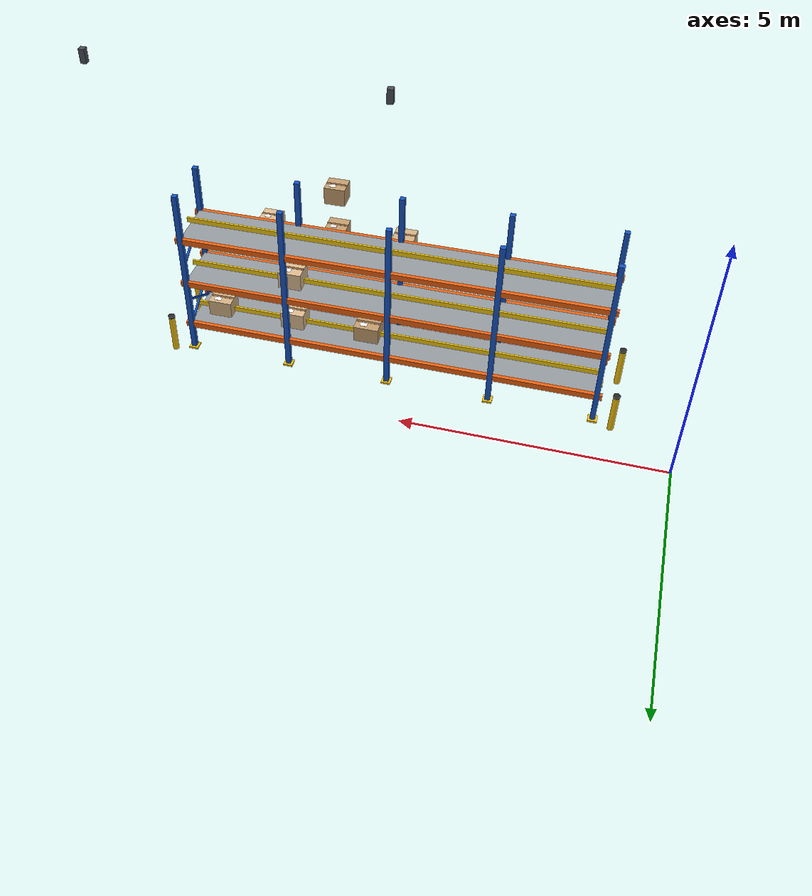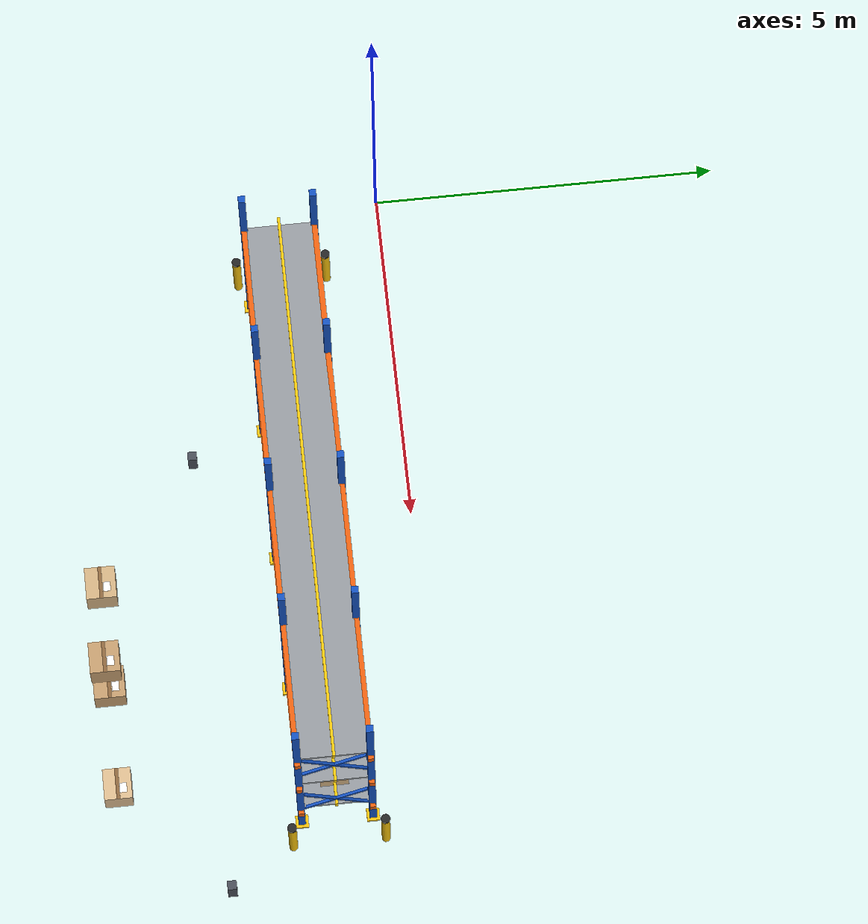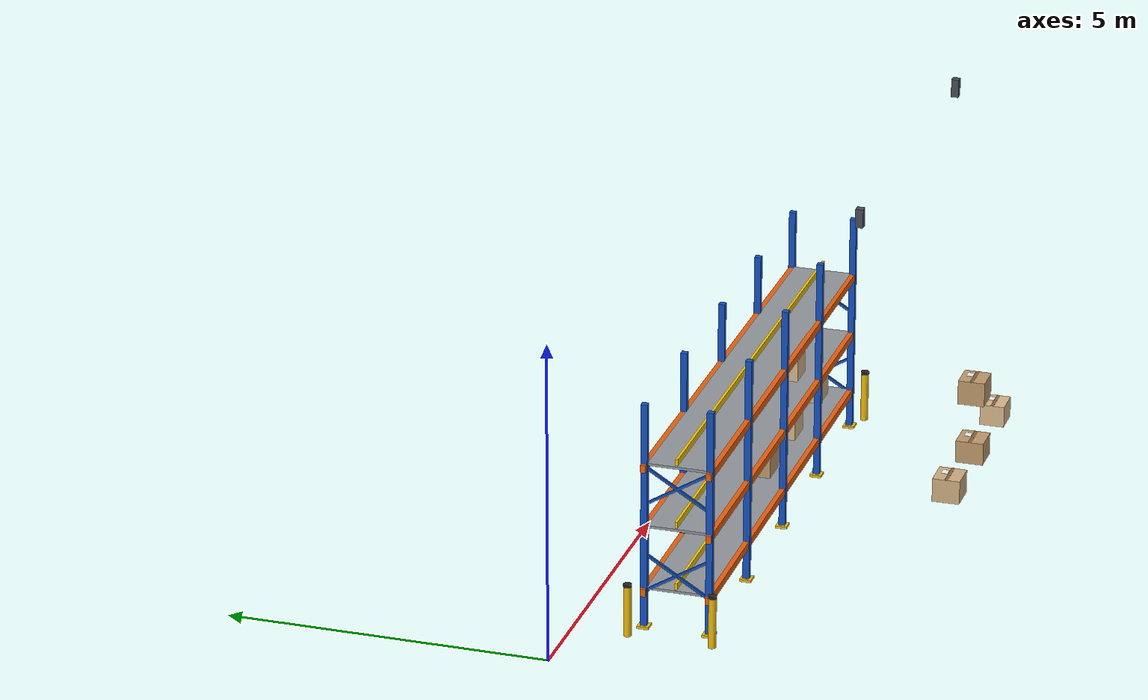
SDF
<sdf version="1.8">
 <world name="warehouse_3d">
  <model name="warehouse_architecture">
   <static>true</static>
   <link name="truss_web_1_3">
    <pose>6.0000 -3.0000 5.0500 0.0000 0.0000 0.0000</pose>
    <visual name="truss_web_1_3_vis">
     <geometry><box><size>0.1200 0.1200 0.3000</size></box></geometry>
     <material>
      <ambient>0.182 0.195 0.221 1.00</ambient>
      <diffuse>0.280 0.300 0.340 1.00</diffuse>
      <specular>0.15 0.15 0.15 1.0</specular>
     </material>
    </visual>
   </link>
   <link name="truss_web_1_4">
    <pose>12.0000 -3.0000 5.0500 0.0000 0.0000 0.0000</pose>
    <visual name="truss_web_1_4_vis">
     <geometry><box><size>0.1200 0.1200 0.3000</size></box></geometry>
     <material>
      <ambient>0.182 0.195 0.221 1.00</ambient>
      <diffuse>0.280 0.300 0.340 1.00</diffuse>
      <specular>0.15 0.15 0.15 1.0</specular>
     </material>
    </visual>
   </link>
  </model>
  <model name="Rack_C_East">
   <static>true</static>
   <pose>5.50 -1.50 0 0 0 0</pose>
   <link name="col_0_0">
    <pose>-4.0000 -0.5000 1.8000 0.0000 0.0000 0.0000</pose>
    <collision name="col_0_0_col"><geometry><box><size>0.1000 0.1000 3.6000</size></box></geometry></collision>
    <visual name="col_0_0_vis">
     <geometry><box><size>0.1000 0.1000 3.6000</size></box></geometry>
     <material>
      <ambient>0.052 0.208 0.488 1.00</ambient>
      <diffuse>0.080 0.320 0.750 1.00</diffuse>
      <specular>0.15 0.15 0.15 1.0</specular>
     </material>
    </visual>
   </link>
   <link name="foot_0_0">
    <pose>-4.0000 -0.5000 0.0200 0.0000 0.0000 0.0000</pose>
    <collision name="foot_0_0_col"><geometry><box><size>0.1800 0.1800 0.0400</size></box></geometry></collision>
    <visual name="foot_0_0_vis">
     <geometry><box><size>0.1800 0.1800 0.0400</size></box></geometry>
     <material>
      <ambient>0.617 0.488 0.033 1.00</ambient>
      <diffuse>0.950 0.750 0.050 1.00</diffuse>
      <specular>0.15 0.15 0.15 1.0</specular>
     </material>
    </visual>
   </link>
   <link name="col_0_1">
    <pose>-4.0000 0.5000 1.8000 0.0000 0.0000 0.0000</pose>
    <collision name="col_0_1_col"><geometry><box><size>0.1000 0.1000 3.6000</size></box></geometry></collision>
    <visual name="col_0_1_vis">
     <geometry><box><size>0.1000 0.1000 3.6000</size></box></geometry>
     <material>
      <ambient>0.052 0.208 0.488 1.00</ambient>
      <diffuse>0.080 0.320 0.750 1.00</diffuse>
      <specular>0.15 0.15 0.15 1.0</specular>
     </material>
    </visual>
   </link>
   <link name="foot_0_1">
    <pose>-4.0000 0.5000 0.0200 0.0000 0.0000 0.0000</pose>
    <collision name="foot_0_1_col"><geometry><box><size>0.1800 0.1800 0.0400</size></box></geometry></collision>
    <visual name="foot_0_1_vis">
     <geometry><box><size>0.1800 0.1800 0.0400</size></box></geometry>
     <material>
      <ambient>0.617 0.488 0.033 1.00</ambient>
      <diffuse>0.950 0.750 0.050 1.00</diffuse>
      <specular>0.15 0.15 0.15 1.0</specular>
     </material>
    </visual>
   </link>
   <link name="col_1_0">
    <pose>-2.0000 -0.5000 1.8000 0.0000 0.0000 0.0000</pose>
    <collision name="col_1_0_col"><geometry><box><size>0.1000 0.1000 3.6000</size></box></geometry></collision>
    <visual name="col_1_0_vis">
     <geometry><box><size>0.1000 0.1000 3.6000</size></box></geometry>
     <material>
      <ambient>0.052 0.208 0.488 1.00</ambient>
      <diffuse>0.080 0.320 0.750 1.00</diffuse>
      <specular>0.15 0.15 0.15 1.0</specular>
     </material>
    </visual>
   </link>
   <link name="foot_1_0">
    <pose>-2.0000 -0.5000 0.0200 0.0000 0.0000 0.0000</pose>
    <collision name="foot_1_0_col"><geometry><box><size>0.1800 0.1800 0.0400</size></box></geometry></collision>
    <visual name="foot_1_0_vis">
     <geometry><box><size>0.1800 0.1800 0.0400</size></box></geometry>
     <material>
      <ambient>0.617 0.488 0.033 1.00</ambient>
      <diffuse>0.950 0.750 0.050 1.00</diffuse>
      <specular>0.15 0.15 0.15 1.0</specular>
     </material>
    </visual>
   </link>
   <link name="col_1_1">
    <pose>-2.0000 0.5000 1.8000 0.0000 0.0000 0.0000</pose>
    <collision name="col_1_1_col"><geometry><box><size>0.1000 0.1000 3.6000</size></box></geometry></collision>
    <visual name="col_1_1_vis">
     <geometry><box><size>0.1000 0.1000 3.6000</size></box></geometry>
     <material>
      <ambient>0.052 0.208 0.488 1.00</ambient>
      <diffuse>0.080 0.320 0.750 1.00</diffuse>
      <specular>0.15 0.15 0.15 1.0</specular>
     </material>
    </visual>
   </link>
   <link name="foot_1_1">
    <pose>-2.0000 0.5000 0.0200 0.0000 0.0000 0.0000</pose>
    <collision name="foot_1_1_col"><geometry><box><size>0.1800 0.1800 0.0400</size></box></geometry></collision>
    <visual name="foot_1_1_vis">
     <geometry><box><size>0.1800 0.1800 0.0400</size></box></geometry>
     <material>
      <ambient>0.617 0.488 0.033 1.00</ambient>
      <diffuse>0.950 0.750 0.050 1.00</diffuse>
      <specular>0.15 0.15 0.15 1.0</specular>
     </material>
    </visual>
   </link>
   <link name="col_2_0">
    <pose>0.0000 -0.5000 1.8000 0.0000 0.0000 0.0000</pose>
    <collision name="col_2_0_col"><geometry><box><size>0.1000 0.1000 3.6000</size></box></geometry></collision>
    <visual name="col_2_0_vis">
     <geometry><box><size>0.1000 0.1000 3.6000</size></box></geometry>
     <material>
      <ambient>0.052 0.208 0.488 1.00</ambient>
      <diffuse>0.080 0.320 0.750 1.00</diffuse>
      <specular>0.15 0.15 0.15 1.0</specular>
     </material>
    </visual>
   </link>
   <link name="foot_2_0">
    <pose>0.0000 -0.5000 0.0200 0.0000 0.0000 0.0000</pose>
    <collision name="foot_2_0_col"><geometry><box><size>0.1800 0.1800 0.0400</size></box></geometry></collision>
    <visual name="foot_2_0_vis">
     <geometry><box><size>0.1800 0.1800 0.0400</size></box></geometry>
     <material>
      <ambient>0.617 0.488 0.033 1.00</ambient>
      <diffuse>0.950 0.750 0.050 1.00</diffuse>
      <specular>0.15 0.15 0.15 1.0</specular>
     </material>
    </visual>
   </link>
   <link name="col_2_1">
    <pose>0.0000 0.5000 1.8000 0.0000 0.0000 0.0000</pose>
    <collision name="col_2_1_col"><geometry><box><size>0.1000 0.1000 3.6000</size></box></geometry></collision>
    <visual name="col_2_1_vis">
     <geometry><box><size>0.1000 0.1000 3.6000</size></box></geometry>
     <material>
      <ambient>0.052 0.208 0.488 1.00</ambient>
      <diffuse>0.080 0.320 0.750 1.00</diffuse>
      <specular>0.15 0.15 0.15 1.0</specular>
     </material>
    </visual>
   </link>
   <link name="foot_2_1">
    <pose>0.0000 0.5000 0.0200 0.0000 0.0000 0.0000</pose>
    <collision name="foot_2_1_col"><geometry><box><size>0.1800 0.1800 0.0400</size></box></geometry></collision>
    <visual name="foot_2_1_vis">
     <geometry><box><size>0.1800 0.1800 0.0400</size></box></geometry>
     <material>
      <ambient>0.617 0.488 0.033 1.00</ambient>
      <diffuse>0.950 0.750 0.050 1.00</diffuse>
      <specular>0.15 0.15 0.15 1.0</specular>
     </material>
    </visual>
   </link>
   <link name="col_3_0">
    <pose>2.0000 -0.5000 1.8000 0.0000 0.0000 0.0000</pose>
    <collision name="col_3_0_col"><geometry><box><size>0.1000 0.1000 3.6000</size></box></geometry></collision>
    <visual name="col_3_0_vis">
     <geometry><box><size>0.1000 0.1000 3.6000</size></box></geometry>
     <material>
      <ambient>0.052 0.208 0.488 1.00</ambient>
      <diffuse>0.080 0.320 0.750 1.00</diffuse>
      <specular>0.15 0.15 0.15 1.0</specular>
     </material>
    </visual>
   </link>
   <link name="foot_3_0">
    <pose>2.0000 -0.5000 0.0200 0.0000 0.0000 0.0000</pose>
    <collision name="foot_3_0_col"><geometry><box><size>0.1800 0.1800 0.0400</size></box></geometry></collision>
    <visual name="foot_3_0_vis">
     <geometry><box><size>0.1800 0.1800 0.0400</size></box></geometry>
     <material>
      <ambient>0.617 0.488 0.033 1.00</ambient>
      <diffuse>0.950 0.750 0.050 1.00</diffuse>
      <specular>0.15 0.15 0.15 1.0</specular>
     </material>
    </visual>
   </link>
   <link name="col_3_1">
    <pose>2.0000 0.5000 1.8000 0.0000 0.0000 0.0000</pose>
    <collision name="col_3_1_col"><geometry><box><size>0.1000 0.1000 3.6000</size></box></geometry></collision>
    <visual name="col_3_1_vis">
     <geometry><box><size>0.1000 0.1000 3.6000</size></box></geometry>
     <material>
      <ambient>0.052 0.208 0.488 1.00</ambient>
      <diffuse>0.080 0.320 0.750 1.00</diffuse>
      <specular>0.15 0.15 0.15 1.0</specular>
     </material>
    </visual>
   </link>
   <link name="foot_3_1">
    <pose>2.0000 0.5000 0.0200 0.0000 0.0000 0.0000</pose>
    <collision name="foot_3_1_col"><geometry><box><size>0.1800 0.1800 0.0400</size></box></geometry></collision>
    <visual name="foot_3_1_vis">
     <geometry><box><size>0.1800 0.1800 0.0400</size></box></geometry>
     <material>
      <ambient>0.617 0.488 0.033 1.00</ambient>
      <diffuse>0.950 0.750 0.050 1.00</diffuse>
      <specular>0.15 0.15 0.15 1.0</specular>
     </material>
    </visual>
   </link>
   <link name="col_4_0">
    <pose>4.0000 -0.5000 1.8000 0.0000 0.0000 0.0000</pose>
    <collision name="col_4_0_col"><geometry><box><size>0.1000 0.1000 3.6000</size></box></geometry></collision>
    <visual name="col_4_0_vis">
     <geometry><box><size>0.1000 0.1000 3.6000</size></box></geometry>
     <material>
      <ambient>0.052 0.208 0.488 1.00</ambient>
      <diffuse>0.080 0.320 0.750 1.00</diffuse>
      <specular>0.15 0.15 0.15 1.0</specular>
     </material>
    </visual>
   </link>
   <link name="foot_4_0">
    <pose>4.0000 -0.5000 0.0200 0.0000 0.0000 0.0000</pose>
    <collision name="foot_4_0_col"><geometry><box><size>0.1800 0.1800 0.0400</size></box></geometry></collision>
    <visual name="foot_4_0_vis">
     <geometry><box><size>0.1800 0.1800 0.0400</size></box></geometry>
     <material>
      <ambient>0.617 0.488 0.033 1.00</ambient>
      <diffuse>0.950 0.750 0.050 1.00</diffuse>
      <specular>0.15 0.15 0.15 1.0</specular>
     </material>
    </visual>
   </link>
   <link name="col_4_1">
    <pose>4.0000 0.5000 1.8000 0.0000 0.0000 0.0000</pose>
    <collision name="col_4_1_col"><geometry><box><size>0.1000 0.1000 3.6000</size></box></geometry></collision>
    <visual name="col_4_1_vis">
     <geometry><box><size>0.1000 0.1000 3.6000</size></box></geometry>
     <material>
      <ambient>0.052 0.208 0.488 1.00</ambient>
      <diffuse>0.080 0.320 0.750 1.00</diffuse>
      <specular>0.15 0.15 0.15 1.0</specular>
     </material>
    </visual>
   </link>
   <link name="foot_4_1">
    <pose>4.0000 0.5000 0.0200 0.0000 0.0000 0.0000</pose>
    <collision name="foot_4_1_col"><geometry><box><size>0.1800 0.1800 0.0400</size></box></geometry></collision>
    <visual name="foot_4_1_vis">
     <geometry><box><size>0.1800 0.1800 0.0400</size></box></geometry>
     <material>
      <ambient>0.617 0.488 0.033 1.00</ambient>
      <diffuse>0.950 0.750 0.050 1.00</diffuse>
      <specular>0.15 0.15 0.15 1.0</specular>
     </material>
    </visual>
   </link>
   <link name="x_brace_low_1_w">
    <pose>-4.0000 0.0000 0.9000 0.5500 0.0000 0.0000</pose>
    <visual name="x_brace_low_1_w_vis">
     <geometry><box><size>0.0400 1.0500 0.0400</size></box></geometry>
     <material>
      <ambient>0.052 0.208 0.488 1.00</ambient>
      <diffuse>0.080 0.320 0.750 1.00</diffuse>
      <specular>0.15 0.15 0.15 1.0</specular>
     </material>
    </visual>
   </link>
   <link name="x_brace_low_2_w">
    <pose>-4.0000 0.0000 0.9000 -0.5500 0.0000 0.0000</pose>
    <visual name="x_brace_low_2_w_vis">
     <geometry><box><size>0.0400 1.0500 0.0400</size></box></geometry>
     <material>
      <ambient>0.052 0.208 0.488 1.00</ambient>
      <diffuse>0.080 0.320 0.750 1.00</diffuse>
      <specular>0.15 0.15 0.15 1.0</specular>
     </material>
    </visual>
   </link>
   <link name="x_brace_hi_1_w">
    <pose>-4.0000 0.0000 2.3000 0.5500 0.0000 0.0000</pose>
    <visual name="x_brace_hi_1_w_vis">
     <geometry><box><size>0.0400 1.0500 0.0400</size></box></geometry>
     <material>
      <ambient>0.052 0.208 0.488 1.00</ambient>
      <diffuse>0.080 0.320 0.750 1.00</diffuse>
      <specular>0.15 0.15 0.15 1.0</specular>
     </material>
    </visual>
   </link>
   <link name="x_brace_hi_2_w">
    <pose>-4.0000 0.0000 2.3000 -0.5500 0.0000 0.0000</pose>
    <visual name="x_brace_hi_2_w_vis">
     <geometry><box><size>0.0400 1.0500 0.0400</size></box></geometry>
     <material>
      <ambient>0.052 0.208 0.488 1.00</ambient>
      <diffuse>0.080 0.320 0.750 1.00</diffuse>
      <specular>0.15 0.15 0.15 1.0</specular>
     </material>
    </visual>
   </link>
   <link name="x_brace_low_1_e">
    <pose>4.0000 0.0000 0.9000 0.5500 0.0000 0.0000</pose>
    <visual name="x_brace_low_1_e_vis">
     <geometry><box><size>0.0400 1.0500 0.0400</size></box></geometry>
     <material>
      <ambient>0.052 0.208 0.488 1.00</ambient>
      <diffuse>0.080 0.320 0.750 1.00</diffuse>
      <specular>0.15 0.15 0.15 1.0</specular>
     </material>
    </visual>
   </link>
   <link name="x_brace_low_2_e">
    <pose>4.0000 0.0000 0.9000 -0.5500 0.0000 0.0000</pose>
    <visual name="x_brace_low_2_e_vis">
     <geometry><box><size>0.0400 1.0500 0.0400</size></box></geometry>
     <material>
      <ambient>0.052 0.208 0.488 1.00</ambient>
      <diffuse>0.080 0.320 0.750 1.00</diffuse>
      <specular>0.15 0.15 0.15 1.0</specular>
     </material>
    </visual>
   </link>
   <link name="x_brace_hi_1_e">
    <pose>4.0000 0.0000 2.3000 0.5500 0.0000 0.0000</pose>
    <visual name="x_brace_hi_1_e_vis">
     <geometry><box><size>0.0400 1.0500 0.0400</size></box></geometry>
     <material>
      <ambient>0.052 0.208 0.488 1.00</ambient>
      <diffuse>0.080 0.320 0.750 1.00</diffuse>
      <specular>0.15 0.15 0.15 1.0</specular>
     </material>
    </visual>
   </link>
   <link name="x_brace_hi_2_e">
    <pose>4.0000 0.0000 2.3000 -0.5500 0.0000 0.0000</pose>
    <visual name="x_brace_hi_2_e_vis">
     <geometry><box><size>0.0400 1.0500 0.0400</size></box></geometry>
     <material>
      <ambient>0.052 0.208 0.488 1.00</ambient>
      <diffuse>0.080 0.320 0.750 1.00</diffuse>
      <specular>0.15 0.15 0.15 1.0</specular>
     </material>
    </visual>
   </link>
   <link name="beam_front_0">
    <pose>0.0000 0.5000 0.6000 0.0000 0.0000 0.0000</pose>
    <collision name="beam_front_0_col">
     <geometry><box><size>8.2000 0.0800 0.1200</size></box></geometry>
    </collision>
    <visual name="beam_front_0_vis">
     <geometry><box><size>8.2000 0.0800 0.1200</size></box></geometry>
     <material>
      <ambient>0.598 0.247 0.039 1.00</ambient>
      <diffuse>0.920 0.380 0.060 1.00</diffuse>
      <specular>0.15 0.15 0.15 1.0</specular>
     </material>
    </visual>
   </link>
   <link name="beam_rear_0">
    <pose>0.0000 -0.5000 0.6000 0.0000 0.0000 0.0000</pose>
    <collision name="beam_rear_0_col">
     <geometry><box><size>8.2000 0.0800 0.1200</size></box></geometry>
    </collision>
    <visual name="beam_rear_0_vis">
     <geometry><box><size>8.2000 0.0800 0.1200</size></box></geometry>
     <material>
      <ambient>0.598 0.247 0.039 1.00</ambient>
      <diffuse>0.920 0.380 0.060 1.00</diffuse>
      <specular>0.15 0.15 0.15 1.0</specular>
     </material>
    </visual>
   </link>
   <link name="deck_0">
    <pose>0.0000 0.0000 0.6400 0.0000 0.0000 0.0000</pose>
    <collision name="deck_0_col"><geometry><box><size>8.0000 0.9400 0.0400</size></box></geometry></collision>
    <visual name="deck_0_vis">
     <geometry><box><size>8.0000 0.9400 0.0400</size></box></geometry>
     <material>
      <ambient>0.377 0.390 0.403 1.00</ambient>
      <diffuse>0.580 0.600 0.620 1.00</diffuse>
      <specular>0.15 0.15 0.15 1.0</specular>
     </material>
    </visual>
   </link>
   <link name="backstop_0">
    <pose>0.0000 0.0000 0.7500 0.0000 0.0000 0.0000</pose>
    <visual name="backstop_0_vis">
     <geometry><box><size>8.1000 0.0400 0.1000</size></box></geometry>
     <material>
      <ambient>0.617 0.507 0.033 1.00</ambient>
      <diffuse>0.950 0.780 0.050 1.00</diffuse>
      <specular>0.15 0.15 0.15 1.0</specular>
     </material>
    </visual>
   </link>
   <link name="beam_front_1">
    <pose>0.0000 0.5000 1.6000 0.0000 0.0000 0.0000</pose>
    <collision name="beam_front_1_col">
     <geometry><box><size>8.2000 0.0800 0.1200</size></box></geometry>
    </collision>
    <visual name="beam_front_1_vis">
     <geometry><box><size>8.2000 0.0800 0.1200</size></box></geometry>
     <material>
      <ambient>0.598 0.247 0.039 1.00</ambient>
      <diffuse>0.920 0.380 0.060 1.00</diffuse>
      <specular>0.15 0.15 0.15 1.0</specular>
     </material>
    </visual>
   </link>
   <link name="beam_rear_1">
    <pose>0.0000 -0.5000 1.6000 0.0000 0.0000 0.0000</pose>
    <collision name="beam_rear_1_col">
     <geometry><box><size>8.2000 0.0800 0.1200</size></box></geometry>
    </collision>
    <visual name="beam_rear_1_vis">
     <geometry><box><size>8.2000 0.0800 0.1200</size></box></geometry>
     <material>
      <ambient>0.598 0.247 0.039 1.00</ambient>
      <diffuse>0.920 0.380 0.060 1.00</diffuse>
      <specular>0.15 0.15 0.15 1.0</specular>
     </material>
    </visual>
   </link>
   <link name="deck_1">
    <pose>0.0000 0.0000 1.6400 0.0000 0.0000 0.0000</pose>
    <collision name="deck_1_col"><geometry><box><size>8.0000 0.9400 0.0400</size></box></geometry></collision>
    <visual name="deck_1_vis">
     <geometry><box><size>8.0000 0.9400 0.0400</size></box></geometry>
     <material>
      <ambient>0.377 0.390 0.403 1.00</ambient>
      <diffuse>0.580 0.600 0.620 1.00</diffuse>
      <specular>0.15 0.15 0.15 1.0</specular>
     </material>
    </visual>
   </link>
   <link name="backstop_1">
    <pose>0.0000 0.0000 1.7500 0.0000 0.0000 0.0000</pose>
    <visual name="backstop_1_vis">
     <geometry><box><size>8.1000 0.0400 0.1000</size></box></geometry>
     <material>
      <ambient>0.617 0.507 0.033 1.00</ambient>
      <diffuse>0.950 0.780 0.050 1.00</diffuse>
      <specular>0.15 0.15 0.15 1.0</specular>
     </material>
    </visual>
   </link>
   <link name="beam_front_2">
    <pose>0.0000 0.5000 2.6000 0.0000 0.0000 0.0000</pose>
    <collision name="beam_front_2_col">
     <geometry><box><size>8.2000 0.0800 0.1200</size></box></geometry>
    </collision>
    <visual name="beam_front_2_vis">
     <geometry><box><size>8.2000 0.0800 0.1200</size></box></geometry>
     <material>
      <ambient>0.598 0.247 0.039 1.00</ambient>
      <diffuse>0.920 0.380 0.060 1.00</diffuse>
      <specular>0.15 0.15 0.15 1.0</specular>
     </material>
    </visual>
   </link>
   <link name="beam_rear_2">
    <pose>0.0000 -0.5000 2.6000 0.0000 0.0000 0.0000</pose>
    <collision name="beam_rear_2_col">
     <geometry><box><size>8.2000 0.0800 0.1200</size></box></geometry>
    </collision>
    <visual name="beam_rear_2_vis">
     <geometry><box><size>8.2000 0.0800 0.1200</size></box></geometry>
     <material>
      <ambient>0.598 0.247 0.039 1.00</ambient>
      <diffuse>0.920 0.380 0.060 1.00</diffuse>
      <specular>0.15 0.15 0.15 1.0</specular>
     </material>
    </visual>
   </link>
   <link name="deck_2">
    <pose>0.0000 0.0000 2.6400 0.0000 0.0000 0.0000</pose>
    <collision name="deck_2_col"><geometry><box><size>8.0000 0.9400 0.0400</size></box></geometry></collision>
    <visual name="deck_2_vis">
     <geometry><box><size>8.0000 0.9400 0.0400</size></box></geometry>
     <material>
      <ambient>0.377 0.390 0.403 1.00</ambient>
      <diffuse>0.580 0.600 0.620 1.00</diffuse>
      <specular>0.15 0.15 0.15 1.0</specular>
     </material>
    </visual>
   </link>
   <link name="backstop_2">
    <pose>0.0000 0.0000 2.7500 0.0000 0.0000 0.0000</pose>
    <visual name="backstop_2_vis">
     <geometry><box><size>8.1000 0.0400 0.1000</size></box></geometry>
     <material>
      <ambient>0.617 0.507 0.033 1.00</ambient>
      <diffuse>0.950 0.780 0.050 1.00</diffuse>
      <specular>0.15 0.15 0.15 1.0</specular>
     </material>
    </visual>
   </link>
   <link name="bollard_0">
    <pose>-4.3500 -0.6500 0.4000 0.0000 0.0000 0.0000</pose>
    <collision name="bollard_0_col">
     <geometry><cylinder><radius>0.0600</radius><length>0.8000</length></cylinder></geometry>
    </collision>
    <visual name="bollard_0_vis">
     <geometry><cylinder><radius>0.0600</radius><length>0.8000</length></cylinder></geometry>
     <material>
      <ambient>0.617 0.488 0.033 1.00</ambient>
      <diffuse>0.950 0.750 0.050 1.00</diffuse>
      <specular>0.2 0.2 0.2 1.0</specular>
     </material>
    </visual>
   </link>
   <link name="bollard_cap_0">
    <pose>-4.3500 -0.6500 0.8200 0.0000 0.0000 0.0000</pose>
    <collision name="bollard_cap_0_col">
     <geometry><cylinder><radius>0.0650</radius><length>0.0400</length></cylinder></geometry>
    </collision>
    <visual name="bollard_cap_0_vis">
     <geometry><cylinder><radius>0.0650</radius><length>0.0400</length></cylinder></geometry>
     <material>
      <ambient>0.098 0.098 0.098 1.00</ambient>
      <diffuse>0.150 0.150 0.150 1.00</diffuse>
      <specular>0.2 0.2 0.2 1.0</specular>
     </material>
    </visual>
   </link>
   <link name="bollard_1">
    <pose>-4.3500 0.6500 0.4000 0.0000 0.0000 0.0000</pose>
    <collision name="bollard_1_col">
     <geometry><cylinder><radius>0.0600</radius><length>0.8000</length></cylinder></geometry>
    </collision>
    <visual name="bollard_1_vis">
     <geometry><cylinder><radius>0.0600</radius><length>0.8000</length></cylinder></geometry>
     <material>
      <ambient>0.617 0.488 0.033 1.00</ambient>
      <diffuse>0.950 0.750 0.050 1.00</diffuse>
      <specular>0.2 0.2 0.2 1.0</specular>
     </material>
    </visual>
   </link>
   <link name="bollard_cap_1">
    <pose>-4.3500 0.6500 0.8200 0.0000 0.0000 0.0000</pose>
    <collision name="bollard_cap_1_col">
     <geometry><cylinder><radius>0.0650</radius><length>0.0400</length></cylinder></geometry>
    </collision>
    <visual name="bollard_cap_1_vis">
     <geometry><cylinder><radius>0.0650</radius><length>0.0400</length></cylinder></geometry>
     <material>
      <ambient>0.098 0.098 0.098 1.00</ambient>
      <diffuse>0.150 0.150 0.150 1.00</diffuse>
      <specular>0.2 0.2 0.2 1.0</specular>
     </material>
    </visual>
   </link>
   <link name="bollard_2">
    <pose>4.3500 -0.6500 0.4000 0.0000 0.0000 0.0000</pose>
    <collision name="bollard_2_col">
     <geometry><cylinder><radius>0.0600</radius><length>0.8000</length></cylinder></geometry>
    </collision>
    <visual name="bollard_2_vis">
     <geometry><cylinder><radius>0.0600</radius><length>0.8000</length></cylinder></geometry>
     <material>
      <ambient>0.617 0.488 0.033 1.00</ambient>
      <diffuse>0.950 0.750 0.050 1.00</diffuse>
      <specular>0.2 0.2 0.2 1.0</specular>
     </material>
    </visual>
   </link>
   <link name="bollard_cap_2">
    <pose>4.3500 -0.6500 0.8200 0.0000 0.0000 0.0000</pose>
    <collision name="bollard_cap_2_col">
     <geometry><cylinder><radius>0.0650</radius><length>0.0400</length></cylinder></geometry>
    </collision>
    <visual name="bollard_cap_2_vis">
     <geometry><cylinder><radius>0.0650</radius><length>0.0400</length></cylinder></geometry>
     <material>
      <ambient>0.098 0.098 0.098 1.00</ambient>
      <diffuse>0.150 0.150 0.150 1.00</diffuse>
      <specular>0.2 0.2 0.2 1.0</specular>
     </material>
    </visual>
   </link>
   <link name="bollard_3">
    <pose>4.3500 0.6500 0.4000 0.0000 0.0000 0.0000</pose>
    <collision name="bollard_3_col">
     <geometry><cylinder><radius>0.0600</radius><length>0.8000</length></cylinder></geometry>
    </collision>
    <visual name="bollard_3_vis">
     <geometry><cylinder><radius>0.0600</radius><length>0.8000</length></cylinder></geometry>
     <material>
      <ambient>0.617 0.488 0.033 1.00</ambient>
      <diffuse>0.950 0.750 0.050 1.00</diffuse>
      <specular>0.2 0.2 0.2 1.0</specular>
     </material>
    </visual>
   </link>
   <link name="bollard_cap_3">
    <pose>4.3500 0.6500 0.8200 0.0000 0.0000 0.0000</pose>
    <collision name="bollard_cap_3_col">
     <geometry><cylinder><radius>0.0650</radius><length>0.0400</length></cylinder></geometry>
    </collision>
    <visual name="bollard_cap_3_vis">
     <geometry><cylinder><radius>0.0650</radius><length>0.0400</length></cylinder></geometry>
     <material>
      <ambient>0.098 0.098 0.098 1.00</ambient>
      <diffuse>0.150 0.150 0.150 1.00</diffuse>
      <specular>0.2 0.2 0.2 1.0</specular>
     </material>
    </visual>
   </link>
  </model>
  <model name="package_P058">
   <static>true</static>
   <pose>6.00 -4.50 0.82 0 0 0</pose>
   <link name="box_link">
    <collision name="box_col"><geometry><box><size>0.47 0.43 0.38</size></box></geometry></collision>
    <visual name="box_vis">
     <geometry><box><size>0.47 0.43 0.38</size></box></geometry>
     <material>
      <ambient>0.57 0.48 0.36 1.0</ambient>
      <diffuse>0.82 0.69 0.51 1.0</diffuse>
      <specular>0.08 0.08 0.08 1.0</specular>
     </material>
    </visual>
    <visual name="top_tape">
     <pose>0 0 0.1910 0 0 0</pose>
     <geometry><box><size>0.472 0.05 0.002</size></box></geometry>
     <material><ambient>0.48 0.35 0.20 1.0</ambient><diffuse>0.55 0.40 0.24 1.0</diffuse></material>
    </visual>
    <visual name="shipping_label">
     <pose>0.070 0.086 0.1920 0 0 0</pose>
     <geometry><box><size>0.14 0.10 0.002</size></box></geometry>
     <material><ambient>0.92 0.92 0.92 1.0</ambient><diffuse>0.98 0.98 0.98 1.0</diffuse></material>
    </visual>
   </link>
  </model>
  <model name="package_P059">
   <static>true</static>
   <pose>7.50 -4.50 0.82 0 0 0</pose>
   <link name="box_link">
    <collision name="box_col"><geometry><box><size>0.46 0.44 0.36</size></box></geometry></collision>
    <visual name="box_vis">
     <geometry><box><size>0.46 0.44 0.36</size></box></geometry>
     <material>
      <ambient>0.53 0.43 0.30 1.0</ambient>
      <diffuse>0.76 0.61 0.43 1.0</diffuse>
      <specular>0.08 0.08 0.08 1.0</specular>
     </material>
    </visual>
    <visual name="top_tape">
     <pose>0 0 0.1810 0 0 0</pose>
     <geometry><box><size>0.462 0.05 0.002</size></box></geometry>
     <material><ambient>0.48 0.35 0.20 1.0</ambient><diffuse>0.55 0.40 0.24 1.0</diffuse></material>
    </visual>
    <visual name="shipping_label">
     <pose>0.069 0.088 0.1820 0 0 0</pose>
     <geometry><box><size>0.14 0.10 0.002</size></box></geometry>
     <material><ambient>0.92 0.92 0.92 1.0</ambient><diffuse>0.98 0.98 0.98 1.0</diffuse></material>
    </visual>
   </link>
  </model>
  <model name="package_P060">
   <static>true</static>
   <pose>9.00 -4.50 0.82 0 0 0</pose>
   <link name="box_link">
    <collision name="box_col"><geometry><box><size>0.45 0.39 0.34</size></box></geometry></collision>
    <visual name="box_vis">
     <geometry><box><size>0.45 0.39 0.34</size></box></geometry>
     <material>
      <ambient>0.60 0.51 0.39 1.0</ambient>
      <diffuse>0.86 0.73 0.56 1.0</diffuse>
      <specular>0.08 0.08 0.08 1.0</specular>
     </material>
    </visual>
    <visual name="top_tape">
     <pose>0 0 0.1710 0 0 0</pose>
     <geometry><box><size>0.452 0.05 0.002</size></box></geometry>
     <material><ambient>0.48 0.35 0.20 1.0</ambient><diffuse>0.55 0.40 0.24 1.0</diffuse></material>
    </visual>
    <visual name="shipping_label">
     <pose>0.068 0.078 0.1720 0 0 0</pose>
     <geometry><box><size>0.14 0.10 0.002</size></box></geometry>
     <material><ambient>0.92 0.92 0.92 1.0</ambient><diffuse>0.98 0.98 0.98 1.0</diffuse></material>
    </visual>
   </link>
  </model>
  <model name="package_P062">
   <static>true</static>
   <pose>7.50 -4.50 1.82 0 0 0</pose>
   <link name="box_link">
    <collision name="box_col"><geometry><box><size>0.45 0.42 0.39</size></box></geometry></collision>
    <visual name="box_vis">
     <geometry><box><size>0.45 0.42 0.39</size></box></geometry>
     <material>
      <ambient>0.53 0.43 0.30 1.0</ambient>
      <diffuse>0.76 0.61 0.43 1.0</diffuse>
      <specular>0.08 0.08 0.08 1.0</specular>
     </material>
    </visual>
    <visual name="top_tape">
     <pose>0 0 0.1960 0 0 0</pose>
     <geometry><box><size>0.452 0.05 0.002</size></box></geometry>
     <material><ambient>0.48 0.35 0.20 1.0</ambient><diffuse>0.55 0.40 0.24 1.0</diffuse></material>
    </visual>
    <visual name="shipping_label">
     <pose>0.068 0.084 0.1970 0 0 0</pose>
     <geometry><box><size>0.14 0.10 0.002</size></box></geometry>
     <material><ambient>0.92 0.92 0.92 1.0</ambient><diffuse>0.98 0.98 0.98 1.0</diffuse></material>
    </visual>
   </link>
  </model>
  <model name="package_P065">
   <static>true</static>
   <pose>6.00 -1.50 0.82 0 0 0</pose>
   <link name="box_link">
    <collision name="box_col"><geometry><box><size>0.48 0.44 0.34</size></box></geometry></collision>
    <visual name="box_vis">
     <geometry><box><size>0.48 0.44 0.34</size></box></geometry>
     <material>
      <ambient>0.53 0.43 0.30 1.0</ambient>
      <diffuse>0.76 0.61 0.43 1.0</diffuse>
      <specular>0.08 0.08 0.08 1.0</specular>
     </material>
    </visual>
    <visual name="top_tape">
     <pose>0 0 0.1710 0 0 0</pose>
     <geometry><box><size>0.482 0.05 0.002</size></box></geometry>
     <material><ambient>0.48 0.35 0.20 1.0</ambient><diffuse>0.55 0.40 0.24 1.0</diffuse></material>
    </visual>
    <visual name="shipping_label">
     <pose>0.072 0.088 0.1720 0 0 0</pose>
     <geometry><box><size>0.14 0.10 0.002</size></box></geometry>
     <material><ambient>0.92 0.92 0.92 1.0</ambient><diffuse>0.98 0.98 0.98 1.0</diffuse></material>
    </visual>
   </link>
  </model>
  <model name="package_P066">
   <static>true</static>
   <pose>7.50 -1.50 0.82 0 0 0</pose>
   <link name="box_link">
    <collision name="box_col"><geometry><box><size>0.47 0.39 0.37</size></box></geometry></collision>
    <visual name="box_vis">
     <geometry><box><size>0.47 0.39 0.37</size></box></geometry>
     <material>
      <ambient>0.60 0.51 0.39 1.0</ambient>
      <diffuse>0.86 0.73 0.56 1.0</diffuse>
      <specular>0.08 0.08 0.08 1.0</specular>
     </material>
    </visual>
    <visual name="top_tape">
     <pose>0 0 0.1860 0 0 0</pose>
     <geometry><box><size>0.472 0.05 0.002</size></box></geometry>
     <material><ambient>0.48 0.35 0.20 1.0</ambient><diffuse>0.55 0.40 0.24 1.0</diffuse></material>
    </visual>
    <visual name="shipping_label">
     <pose>0.070 0.078 0.1870 0 0 0</pose>
     <geometry><box><size>0.14 0.10 0.002</size></box></geometry>
     <material><ambient>0.92 0.92 0.92 1.0</ambient><diffuse>0.98 0.98 0.98 1.0</diffuse></material>
    </visual>
   </link>
  </model>
  <model name="package_P067">
   <static>true</static>
   <pose>9.00 -1.50 0.82 0 0 0</pose>
   <link name="box_link">
    <collision name="box_col"><geometry><box><size>0.46 0.40 0.35</size></box></geometry></collision>
    <visual name="box_vis">
     <geometry><box><size>0.46 0.40 0.35</size></box></geometry>
     <material>
      <ambient>0.57 0.48 0.36 1.0</ambient>
      <diffuse>0.82 0.69 0.51 1.0</diffuse>
      <specular>0.08 0.08 0.08 1.0</specular>
     </material>
    </visual>
    <visual name="top_tape">
     <pose>0 0 0.1760 0 0 0</pose>
     <geometry><box><size>0.462 0.05 0.002</size></box></geometry>
     <material><ambient>0.48 0.35 0.20 1.0</ambient><diffuse>0.55 0.40 0.24 1.0</diffuse></material>
    </visual>
    <visual name="shipping_label">
     <pose>0.069 0.080 0.1770 0 0 0</pose>
     <geometry><box><size>0.14 0.10 0.002</size></box></geometry>
     <material><ambient>0.92 0.92 0.92 1.0</ambient><diffuse>0.98 0.98 0.98 1.0</diffuse></material>
    </visual>
   </link>
  </model>
  <model name="package_P069">
   <static>true</static>
   <pose>7.50 -1.50 1.82 0 0 0</pose>
   <link name="box_link">
    <collision name="box_col"><geometry><box><size>0.45 0.44 0.38</size></box></geometry></collision>
    <visual name="box_vis">
     <geometry><box><size>0.45 0.44 0.38</size></box></geometry>
     <material>
      <ambient>0.60 0.51 0.39 1.0</ambient>
      <diffuse>0.86 0.73 0.56 1.0</diffuse>
      <specular>0.08 0.08 0.08 1.0</specular>
     </material>
    </visual>
    <visual name="top_tape">
     <pose>0 0 0.1910 0 0 0</pose>
     <geometry><box><size>0.452 0.05 0.002</size></box></geometry>
     <material><ambient>0.48 0.35 0.20 1.0</ambient><diffuse>0.55 0.40 0.24 1.0</diffuse></material>
    </visual>
    <visual name="shipping_label">
     <pose>0.068 0.088 0.1920 0 0 0</pose>
     <geometry><box><size>0.14 0.10 0.002</size></box></geometry>
     <material><ambient>0.92 0.92 0.92 1.0</ambient><diffuse>0.98 0.98 0.98 1.0</diffuse></material>
    </visual>
   </link>
  </model>
 </world>
</sdf>
